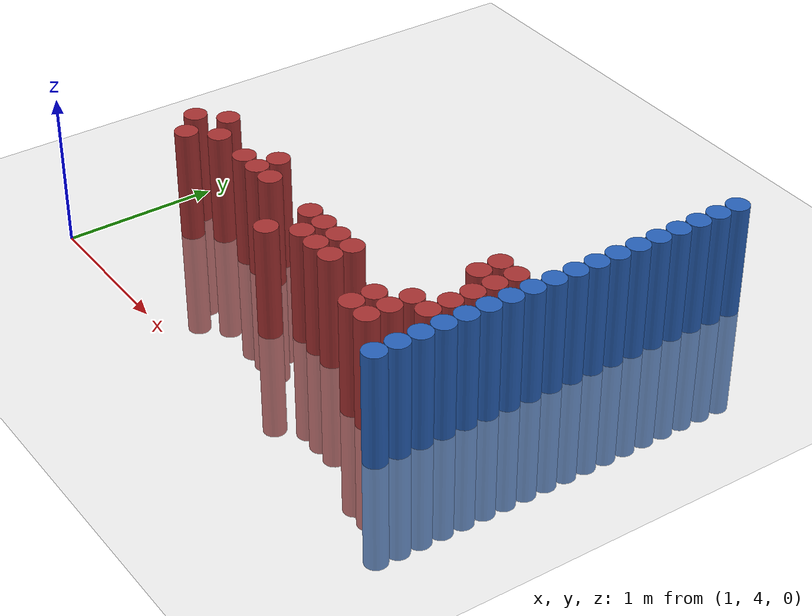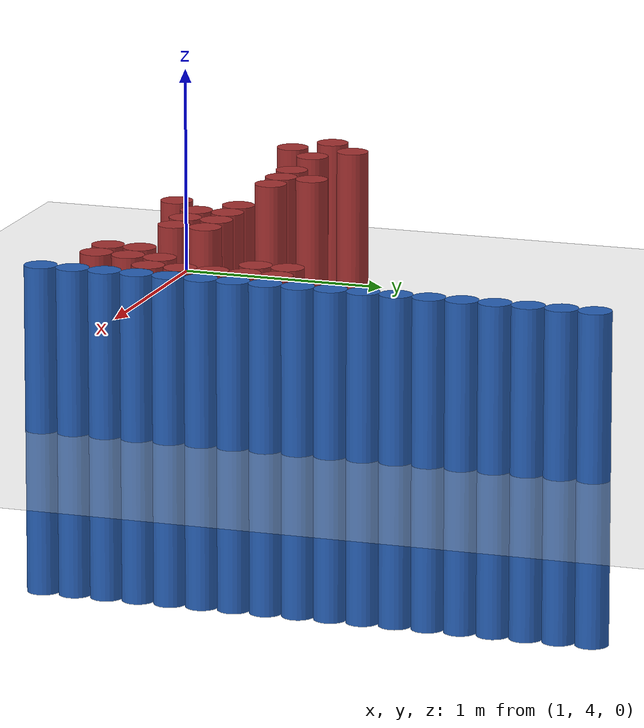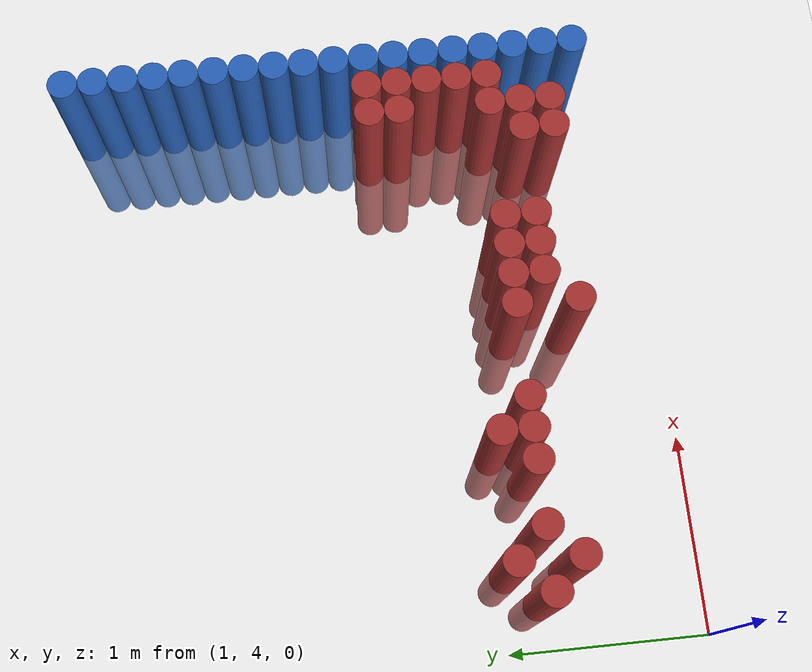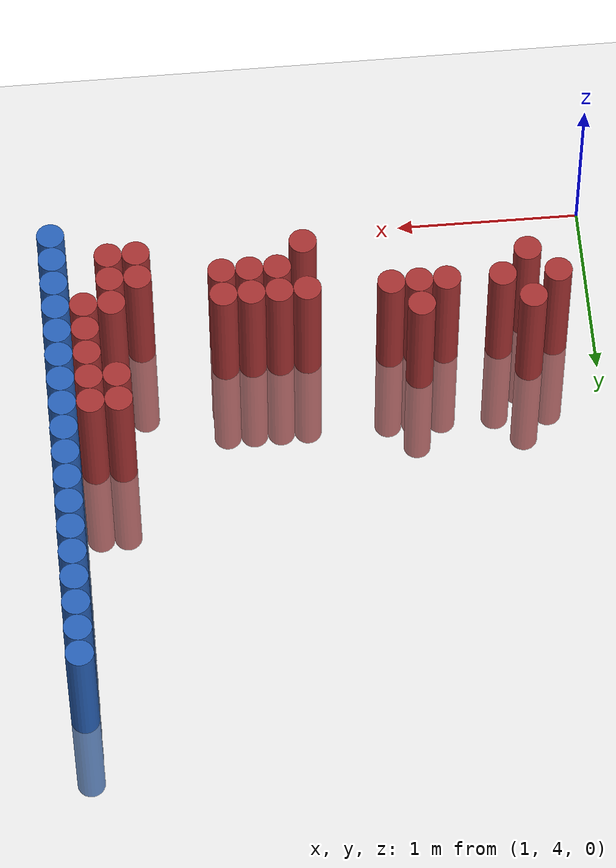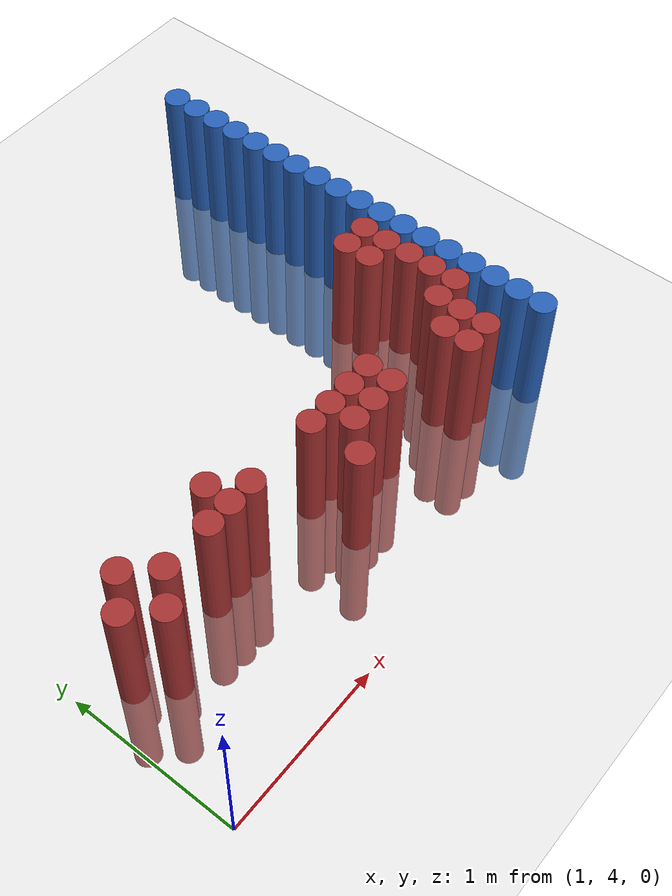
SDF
<sdf version="1.6">
 <world name="default">
  <model name="ground_plane">
   <static>1</static>
   <link name="link">
    <collision name="collision">
     <geometry><plane><normal>0 0 1</normal><size>100 100</size></plane></geometry>
     <surface><friction><ode><mu>100</mu><mu2>50</mu2></ode></friction></surface>
    </collision>
    <visual name="visual">
     <cast_shadows>0</cast_shadows>
     <geometry><plane><normal>0 0 1</normal><size>100 100</size></plane></geometry>
     <material>
      <script><uri>file://media/materials/scripts/gazebo.material</uri><name>Gazebo/Grey</name></script>
     </material>
    </visual>
   </link>
  </model>
  <model name="unit_cylinder_172">
   <static>1</static>
   <pose>3.925000 4.375000 0.000000 0.000000 0.000000 0.000000</pose>
   <link name="link">
    <inertial>
     <mass>1</mass>
     <inertia><ixx>0.145833</ixx><ixy>0</ixy><ixz>0</ixz><iyy>0.145833</iyy><iyz>0</iyz><izz>0.125</izz></inertia>
    </inertial>
    <collision name="collision">
     <geometry><cylinder><radius>0.075000</radius><length>1.5</length></cylinder></geometry>
    </collision>
    <visual name="visual">
     <geometry><cylinder><radius>0.075000</radius><length>1.5</length></cylinder></geometry>
     <material>
      <ambient>0.152000 0.379000 0.720000 1</ambient>
      <diffuse>0.152000 0.379000 0.720000 1</diffuse>
     </material>
     <material>
      <script><name>Gazebo/Grey</name><uri>file://media/materials/scripts/gazebo.material</uri></script>
     </material>
    </visual>
   </link>
  </model>
  <model name="unit_cylinder_174">
   <static>1</static>
   <pose>3.925000 4.525000 0.000000 0.000000 0.000000 0.000000</pose>
   <link name="link">
    <inertial>
     <mass>1</mass>
     <inertia><ixx>0.145833</ixx><ixy>0</ixy><ixz>0</ixz><iyy>0.145833</iyy><iyz>0</iyz><izz>0.125</izz></inertia>
    </inertial>
    <collision name="collision">
     <geometry><cylinder><radius>0.075000</radius><length>1.5</length></cylinder></geometry>
    </collision>
    <visual name="visual">
     <geometry><cylinder><radius>0.075000</radius><length>1.5</length></cylinder></geometry>
     <material>
      <ambient>0.152000 0.379000 0.720000 1</ambient>
      <diffuse>0.152000 0.379000 0.720000 1</diffuse>
     </material>
     <material>
      <script><name>Gazebo/Grey</name><uri>file://media/materials/scripts/gazebo.material</uri></script>
     </material>
    </visual>
   </link>
  </model>
  <model name="unit_cylinder_176">
   <static>1</static>
   <pose>3.925000 4.675000 0.000000 0.000000 0.000000 0.000000</pose>
   <link name="link">
    <inertial>
     <mass>1</mass>
     <inertia><ixx>0.145833</ixx><ixy>0</ixy><ixz>0</ixz><iyy>0.145833</iyy><iyz>0</iyz><izz>0.125</izz></inertia>
    </inertial>
    <collision name="collision">
     <geometry><cylinder><radius>0.075000</radius><length>1.5</length></cylinder></geometry>
    </collision>
    <visual name="visual">
     <geometry><cylinder><radius>0.075000</radius><length>1.5</length></cylinder></geometry>
     <material>
      <ambient>0.152000 0.379000 0.720000 1</ambient>
      <diffuse>0.152000 0.379000 0.720000 1</diffuse>
     </material>
     <material>
      <script><name>Gazebo/Grey</name><uri>file://media/materials/scripts/gazebo.material</uri></script>
     </material>
    </visual>
   </link>
  </model>
  <model name="unit_cylinder_178">
   <static>1</static>
   <pose>3.925000 4.825000 0.000000 0.000000 0.000000 0.000000</pose>
   <link name="link">
    <inertial>
     <mass>1</mass>
     <inertia><ixx>0.145833</ixx><ixy>0</ixy><ixz>0</ixz><iyy>0.145833</iyy><iyz>0</iyz><izz>0.125</izz></inertia>
    </inertial>
    <collision name="collision">
     <geometry><cylinder><radius>0.075000</radius><length>1.5</length></cylinder></geometry>
    </collision>
    <visual name="visual">
     <geometry><cylinder><radius>0.075000</radius><length>1.5</length></cylinder></geometry>
     <material>
      <ambient>0.152000 0.379000 0.720000 1</ambient>
      <diffuse>0.152000 0.379000 0.720000 1</diffuse>
     </material>
     <material>
      <script><name>Gazebo/Grey</name><uri>file://media/materials/scripts/gazebo.material</uri></script>
     </material>
    </visual>
   </link>
  </model>
  <model name="unit_cylinder_180">
   <static>1</static>
   <pose>3.925000 4.975000 0.000000 0.000000 0.000000 0.000000</pose>
   <link name="link">
    <inertial>
     <mass>1</mass>
     <inertia><ixx>0.145833</ixx><ixy>0</ixy><ixz>0</ixz><iyy>0.145833</iyy><iyz>0</iyz><izz>0.125</izz></inertia>
    </inertial>
    <collision name="collision">
     <geometry><cylinder><radius>0.075000</radius><length>1.5</length></cylinder></geometry>
    </collision>
    <visual name="visual">
     <geometry><cylinder><radius>0.075000</radius><length>1.5</length></cylinder></geometry>
     <material>
      <ambient>0.152000 0.379000 0.720000 1</ambient>
      <diffuse>0.152000 0.379000 0.720000 1</diffuse>
     </material>
     <material>
      <script><name>Gazebo/Grey</name><uri>file://media/materials/scripts/gazebo.material</uri></script>
     </material>
    </visual>
   </link>
  </model>
  <model name="unit_cylinder_182">
   <static>1</static>
   <pose>3.925000 5.125000 0.000000 0.000000 0.000000 0.000000</pose>
   <link name="link">
    <inertial>
     <mass>1</mass>
     <inertia><ixx>0.145833</ixx><ixy>0</ixy><ixz>0</ixz><iyy>0.145833</iyy><iyz>0</iyz><izz>0.125</izz></inertia>
    </inertial>
    <collision name="collision">
     <geometry><cylinder><radius>0.075000</radius><length>1.5</length></cylinder></geometry>
    </collision>
    <visual name="visual">
     <geometry><cylinder><radius>0.075000</radius><length>1.5</length></cylinder></geometry>
     <material>
      <ambient>0.152000 0.379000 0.720000 1</ambient>
      <diffuse>0.152000 0.379000 0.720000 1</diffuse>
     </material>
     <material>
      <script><name>Gazebo/Grey</name><uri>file://media/materials/scripts/gazebo.material</uri></script>
     </material>
    </visual>
   </link>
  </model>
  <model name="unit_cylinder_184">
   <static>1</static>
   <pose>3.925000 5.275000 0.000000 0.000000 0.000000 0.000000</pose>
   <link name="link">
    <inertial>
     <mass>1</mass>
     <inertia><ixx>0.145833</ixx><ixy>0</ixy><ixz>0</ixz><iyy>0.145833</iyy><iyz>0</iyz><izz>0.125</izz></inertia>
    </inertial>
    <collision name="collision">
     <geometry><cylinder><radius>0.075000</radius><length>1.5</length></cylinder></geometry>
    </collision>
    <visual name="visual">
     <geometry><cylinder><radius>0.075000</radius><length>1.5</length></cylinder></geometry>
     <material>
      <ambient>0.152000 0.379000 0.720000 1</ambient>
      <diffuse>0.152000 0.379000 0.720000 1</diffuse>
     </material>
     <material>
      <script><name>Gazebo/Grey</name><uri>file://media/materials/scripts/gazebo.material</uri></script>
     </material>
    </visual>
   </link>
  </model>
  <model name="unit_cylinder_186">
   <static>1</static>
   <pose>3.925000 5.425000 0.000000 0.000000 0.000000 0.000000</pose>
   <link name="link">
    <inertial>
     <mass>1</mass>
     <inertia><ixx>0.145833</ixx><ixy>0</ixy><ixz>0</ixz><iyy>0.145833</iyy><iyz>0</iyz><izz>0.125</izz></inertia>
    </inertial>
    <collision name="collision">
     <geometry><cylinder><radius>0.075000</radius><length>1.5</length></cylinder></geometry>
    </collision>
    <visual name="visual">
     <geometry><cylinder><radius>0.075000</radius><length>1.5</length></cylinder></geometry>
     <material>
      <ambient>0.152000 0.379000 0.720000 1</ambient>
      <diffuse>0.152000 0.379000 0.720000 1</diffuse>
     </material>
     <material>
      <script><name>Gazebo/Grey</name><uri>file://media/materials/scripts/gazebo.material</uri></script>
     </material>
    </visual>
   </link>
  </model>
  <model name="unit_cylinder_188">
   <static>1</static>
   <pose>3.925000 5.575000 0.000000 0.000000 0.000000 0.000000</pose>
   <link name="link">
    <inertial>
     <mass>1</mass>
     <inertia><ixx>0.145833</ixx><ixy>0</ixy><ixz>0</ixz><iyy>0.145833</iyy><iyz>0</iyz><izz>0.125</izz></inertia>
    </inertial>
    <collision name="collision">
     <geometry><cylinder><radius>0.075000</radius><length>1.5</length></cylinder></geometry>
    </collision>
    <visual name="visual">
     <geometry><cylinder><radius>0.075000</radius><length>1.5</length></cylinder></geometry>
     <material>
      <ambient>0.152000 0.379000 0.720000 1</ambient>
      <diffuse>0.152000 0.379000 0.720000 1</diffuse>
     </material>
     <material>
      <script><name>Gazebo/Grey</name><uri>file://media/materials/scripts/gazebo.material</uri></script>
     </material>
    </visual>
   </link>
  </model>
  <model name="unit_cylinder_190">
   <static>1</static>
   <pose>3.925000 5.725000 0.000000 0.000000 0.000000 0.000000</pose>
   <link name="link">
    <inertial>
     <mass>1</mass>
     <inertia><ixx>0.145833</ixx><ixy>0</ixy><ixz>0</ixz><iyy>0.145833</iyy><iyz>0</iyz><izz>0.125</izz></inertia>
    </inertial>
    <collision name="collision">
     <geometry><cylinder><radius>0.075000</radius><length>1.5</length></cylinder></geometry>
    </collision>
    <visual name="visual">
     <geometry><cylinder><radius>0.075000</radius><length>1.5</length></cylinder></geometry>
     <material>
      <ambient>0.152000 0.379000 0.720000 1</ambient>
      <diffuse>0.152000 0.379000 0.720000 1</diffuse>
     </material>
     <material>
      <script><name>Gazebo/Grey</name><uri>file://media/materials/scripts/gazebo.material</uri></script>
     </material>
    </visual>
   </link>
  </model>
  <model name="unit_cylinder_192">
   <static>1</static>
   <pose>3.925000 5.875000 0.000000 0.000000 0.000000 0.000000</pose>
   <link name="link">
    <inertial>
     <mass>1</mass>
     <inertia><ixx>0.145833</ixx><ixy>0</ixy><ixz>0</ixz><iyy>0.145833</iyy><iyz>0</iyz><izz>0.125</izz></inertia>
    </inertial>
    <collision name="collision">
     <geometry><cylinder><radius>0.075000</radius><length>1.5</length></cylinder></geometry>
    </collision>
    <visual name="visual">
     <geometry><cylinder><radius>0.075000</radius><length>1.5</length></cylinder></geometry>
     <material>
      <ambient>0.152000 0.379000 0.720000 1</ambient>
      <diffuse>0.152000 0.379000 0.720000 1</diffuse>
     </material>
     <material>
      <script><name>Gazebo/Grey</name><uri>file://media/materials/scripts/gazebo.material</uri></script>
     </material>
    </visual>
   </link>
  </model>
  <model name="unit_cylinder_194">
   <static>1</static>
   <pose>3.925000 6.025000 0.000000 0.000000 0.000000 0.000000</pose>
   <link name="link">
    <inertial>
     <mass>1</mass>
     <inertia><ixx>0.145833</ixx><ixy>0</ixy><ixz>0</ixz><iyy>0.145833</iyy><iyz>0</iyz><izz>0.125</izz></inertia>
    </inertial>
    <collision name="collision">
     <geometry><cylinder><radius>0.075000</radius><length>1.5</length></cylinder></geometry>
    </collision>
    <visual name="visual">
     <geometry><cylinder><radius>0.075000</radius><length>1.5</length></cylinder></geometry>
     <material>
      <ambient>0.152000 0.379000 0.720000 1</ambient>
      <diffuse>0.152000 0.379000 0.720000 1</diffuse>
     </material>
     <material>
      <script><name>Gazebo/Grey</name><uri>file://media/materials/scripts/gazebo.material</uri></script>
     </material>
    </visual>
   </link>
  </model>
  <model name="unit_cylinder_196">
   <static>1</static>
   <pose>3.925000 6.175000 0.000000 0.000000 0.000000 0.000000</pose>
   <link name="link">
    <inertial>
     <mass>1</mass>
     <inertia><ixx>0.145833</ixx><ixy>0</ixy><ixz>0</ixz><iyy>0.145833</iyy><iyz>0</iyz><izz>0.125</izz></inertia>
    </inertial>
    <collision name="collision">
     <geometry><cylinder><radius>0.075000</radius><length>1.5</length></cylinder></geometry>
    </collision>
    <visual name="visual">
     <geometry><cylinder><radius>0.075000</radius><length>1.5</length></cylinder></geometry>
     <material>
      <ambient>0.152000 0.379000 0.720000 1</ambient>
      <diffuse>0.152000 0.379000 0.720000 1</diffuse>
     </material>
     <material>
      <script><name>Gazebo/Grey</name><uri>file://media/materials/scripts/gazebo.material</uri></script>
     </material>
    </visual>
   </link>
  </model>
  <model name="unit_cylinder_198">
   <static>1</static>
   <pose>3.925000 6.325000 0.000000 0.000000 0.000000 0.000000</pose>
   <link name="link">
    <inertial>
     <mass>1</mass>
     <inertia><ixx>0.145833</ixx><ixy>0</ixy><ixz>0</ixz><iyy>0.145833</iyy><iyz>0</iyz><izz>0.125</izz></inertia>
    </inertial>
    <collision name="collision">
     <geometry><cylinder><radius>0.075000</radius><length>1.5</length></cylinder></geometry>
    </collision>
    <visual name="visual">
     <geometry><cylinder><radius>0.075000</radius><length>1.5</length></cylinder></geometry>
     <material>
      <ambient>0.152000 0.379000 0.720000 1</ambient>
      <diffuse>0.152000 0.379000 0.720000 1</diffuse>
     </material>
     <material>
      <script><name>Gazebo/Grey</name><uri>file://media/materials/scripts/gazebo.material</uri></script>
     </material>
    </visual>
   </link>
  </model>
  <model name="unit_cylinder_200">
   <static>1</static>
   <pose>3.925000 6.475000 0.000000 0.000000 0.000000 0.000000</pose>
   <link name="link">
    <inertial>
     <mass>1</mass>
     <inertia><ixx>0.145833</ixx><ixy>0</ixy><ixz>0</ixz><iyy>0.145833</iyy><iyz>0</iyz><izz>0.125</izz></inertia>
    </inertial>
    <collision name="collision">
     <geometry><cylinder><radius>0.075000</radius><length>1.5</length></cylinder></geometry>
    </collision>
    <visual name="visual">
     <geometry><cylinder><radius>0.075000</radius><length>1.5</length></cylinder></geometry>
     <material>
      <ambient>0.152000 0.379000 0.720000 1</ambient>
      <diffuse>0.152000 0.379000 0.720000 1</diffuse>
     </material>
     <material>
      <script><name>Gazebo/Grey</name><uri>file://media/materials/scripts/gazebo.material</uri></script>
     </material>
    </visual>
   </link>
  </model>
  <model name="unit_cylinder_202">
   <static>1</static>
   <pose>3.925000 6.625000 0.000000 0.000000 0.000000 0.000000</pose>
   <link name="link">
    <inertial>
     <mass>1</mass>
     <inertia><ixx>0.145833</ixx><ixy>0</ixy><ixz>0</ixz><iyy>0.145833</iyy><iyz>0</iyz><izz>0.125</izz></inertia>
    </inertial>
    <collision name="collision">
     <geometry><cylinder><radius>0.075000</radius><length>1.5</length></cylinder></geometry>
    </collision>
    <visual name="visual">
     <geometry><cylinder><radius>0.075000</radius><length>1.5</length></cylinder></geometry>
     <material>
      <ambient>0.152000 0.379000 0.720000 1</ambient>
      <diffuse>0.152000 0.379000 0.720000 1</diffuse>
     </material>
     <material>
      <script><name>Gazebo/Grey</name><uri>file://media/materials/scripts/gazebo.material</uri></script>
     </material>
    </visual>
   </link>
  </model>
  <model name="unit_cylinder_204">
   <static>1</static>
   <pose>3.925000 6.775000 0.000000 0.000000 0.000000 0.000000</pose>
   <link name="link">
    <inertial>
     <mass>1</mass>
     <inertia><ixx>0.145833</ixx><ixy>0</ixy><ixz>0</ixz><iyy>0.145833</iyy><iyz>0</iyz><izz>0.125</izz></inertia>
    </inertial>
    <collision name="collision">
     <geometry><cylinder><radius>0.075000</radius><length>1.5</length></cylinder></geometry>
    </collision>
    <visual name="visual">
     <geometry><cylinder><radius>0.075000</radius><length>1.5</length></cylinder></geometry>
     <material>
      <ambient>0.152000 0.379000 0.720000 1</ambient>
      <diffuse>0.152000 0.379000 0.720000 1</diffuse>
     </material>
     <material>
      <script><name>Gazebo/Grey</name><uri>file://media/materials/scripts/gazebo.material</uri></script>
     </material>
    </visual>
   </link>
  </model>
  <model name="unit_cylinder_206">
   <static>1</static>
   <pose>3.925000 6.925000 0.000000 0.000000 0.000000 0.000000</pose>
   <link name="link">
    <inertial>
     <mass>1</mass>
     <inertia><ixx>0.145833</ixx><ixy>0</ixy><ixz>0</ixz><iyy>0.145833</iyy><iyz>0</iyz><izz>0.125</izz></inertia>
    </inertial>
    <collision name="collision">
     <geometry><cylinder><radius>0.075000</radius><length>1.5</length></cylinder></geometry>
    </collision>
    <visual name="visual">
     <geometry><cylinder><radius>0.075000</radius><length>1.5</length></cylinder></geometry>
     <material>
      <ambient>0.152000 0.379000 0.720000 1</ambient>
      <diffuse>0.152000 0.379000 0.720000 1</diffuse>
     </material>
     <material>
      <script><name>Gazebo/Grey</name><uri>file://media/materials/scripts/gazebo.material</uri></script>
     </material>
    </visual>
   </link>
  </model>
  <model name="unit_cylinder_428">
   <static>1</static>
   <pose>1.225000 4.825000 0.000000 0.000000 0.000000 0.000000</pose>
   <link name="link">
    <inertial>
     <mass>1</mass>
     <inertia><ixx>0.145833</ixx><ixy>0</ixy><ixz>0</ixz><iyy>0.145833</iyy><iyz>0</iyz><izz>0.125</izz></inertia>
    </inertial>
    <collision name="collision">
     <geometry><cylinder><radius>0.075000</radius><length>1.5</length></cylinder></geometry>
    </collision>
    <visual name="visual">
     <geometry><cylinder><radius>0.075000</radius><length>1.5</length></cylinder></geometry>
     <material>
      <ambient>0.648000 0.192000 0.192000 1</ambient>
      <diffuse>0.648000 0.192000 0.192000 1</diffuse>
     </material>
     <material>
      <script><name>Gazebo/Grey</name><uri>file://media/materials/scripts/gazebo.material</uri></script>
     </material>
    </visual>
   </link>
  </model>
  <model name="unit_cylinder_430">
   <static>1</static>
   <pose>1.375000 4.675000 0.000000 0.000000 0.000000 0.000000</pose>
   <link name="link">
    <inertial>
     <mass>1</mass>
     <inertia><ixx>0.145833</ixx><ixy>0</ixy><ixz>0</ixz><iyy>0.145833</iyy><iyz>0</iyz><izz>0.125</izz></inertia>
    </inertial>
    <collision name="collision">
     <geometry><cylinder><radius>0.075000</radius><length>1.5</length></cylinder></geometry>
    </collision>
    <visual name="visual">
     <geometry><cylinder><radius>0.075000</radius><length>1.5</length></cylinder></geometry>
     <material>
      <ambient>0.648000 0.192000 0.192000 1</ambient>
      <diffuse>0.648000 0.192000 0.192000 1</diffuse>
     </material>
     <material>
      <script><name>Gazebo/Grey</name><uri>file://media/materials/scripts/gazebo.material</uri></script>
     </material>
    </visual>
   </link>
  </model>
  <model name="unit_cylinder_431">
   <static>1</static>
   <pose>1.375000 4.975000 0.000000 0.000000 0.000000 0.000000</pose>
   <link name="link">
    <inertial>
     <mass>1</mass>
     <inertia><ixx>0.145833</ixx><ixy>0</ixy><ixz>0</ixz><iyy>0.145833</iyy><iyz>0</iyz><izz>0.125</izz></inertia>
    </inertial>
    <collision name="collision">
     <geometry><cylinder><radius>0.075000</radius><length>1.5</length></cylinder></geometry>
    </collision>
    <visual name="visual">
     <geometry><cylinder><radius>0.075000</radius><length>1.5</length></cylinder></geometry>
     <material>
      <ambient>0.648000 0.192000 0.192000 1</ambient>
      <diffuse>0.648000 0.192000 0.192000 1</diffuse>
     </material>
     <material>
      <script><name>Gazebo/Grey</name><uri>file://media/materials/scripts/gazebo.material</uri></script>
     </material>
    </visual>
   </link>
  </model>
  <model name="unit_cylinder_434">
   <static>1</static>
   <pose>1.525000 4.825000 0.000000 0.000000 0.000000 0.000000</pose>
   <link name="link">
    <inertial>
     <mass>1</mass>
     <inertia><ixx>0.145833</ixx><ixy>0</ixy><ixz>0</ixz><iyy>0.145833</iyy><iyz>0</iyz><izz>0.125</izz></inertia>
    </inertial>
    <collision name="collision">
     <geometry><cylinder><radius>0.075000</radius><length>1.5</length></cylinder></geometry>
    </collision>
    <visual name="visual">
     <geometry><cylinder><radius>0.075000</radius><length>1.5</length></cylinder></geometry>
     <material>
      <ambient>0.648000 0.192000 0.192000 1</ambient>
      <diffuse>0.648000 0.192000 0.192000 1</diffuse>
     </material>
     <material>
      <script><name>Gazebo/Grey</name><uri>file://media/materials/scripts/gazebo.material</uri></script>
     </material>
    </visual>
   </link>
  </model>
  <model name="unit_cylinder_442">
   <static>1</static>
   <pose>1.825000 4.825000 0.000000 0.000000 0.000000 0.000000</pose>
   <link name="link">
    <inertial>
     <mass>1</mass>
     <inertia><ixx>0.145833</ixx><ixy>0</ixy><ixz>0</ixz><iyy>0.145833</iyy><iyz>0</iyz><izz>0.125</izz></inertia>
    </inertial>
    <collision name="collision">
     <geometry><cylinder><radius>0.075000</radius><length>1.5</length></cylinder></geometry>
    </collision>
    <visual name="visual">
     <geometry><cylinder><radius>0.075000</radius><length>1.5</length></cylinder></geometry>
     <material>
      <ambient>0.648000 0.192000 0.192000 1</ambient>
      <diffuse>0.648000 0.192000 0.192000 1</diffuse>
     </material>
     <material>
      <script><name>Gazebo/Grey</name><uri>file://media/materials/scripts/gazebo.material</uri></script>
     </material>
    </visual>
   </link>
  </model>
  <model name="unit_cylinder_443">
   <static>1</static>
   <pose>1.975000 4.825000 0.000000 0.000000 0.000000 0.000000</pose>
   <link name="link">
    <inertial>
     <mass>1</mass>
     <inertia><ixx>0.145833</ixx><ixy>0</ixy><ixz>0</ixz><iyy>0.145833</iyy><iyz>0</iyz><izz>0.125</izz></inertia>
    </inertial>
    <collision name="collision">
     <geometry><cylinder><radius>0.075000</radius><length>1.5</length></cylinder></geometry>
    </collision>
    <visual name="visual">
     <geometry><cylinder><radius>0.075000</radius><length>1.5</length></cylinder></geometry>
     <material>
      <ambient>0.648000 0.192000 0.192000 1</ambient>
      <diffuse>0.648000 0.192000 0.192000 1</diffuse>
     </material>
     <material>
      <script><name>Gazebo/Grey</name><uri>file://media/materials/scripts/gazebo.material</uri></script>
     </material>
    </visual>
   </link>
  </model>
  <model name="unit_cylinder_444">
   <static>1</static>
   <pose>1.975000 4.975000 0.000000 0.000000 0.000000 0.000000</pose>
   <link name="link">
    <inertial>
     <mass>1</mass>
     <inertia><ixx>0.145833</ixx><ixy>0</ixy><ixz>0</ixz><iyy>0.145833</iyy><iyz>0</iyz><izz>0.125</izz></inertia>
    </inertial>
    <collision name="collision">
     <geometry><cylinder><radius>0.075000</radius><length>1.5</length></cylinder></geometry>
    </collision>
    <visual name="visual">
     <geometry><cylinder><radius>0.075000</radius><length>1.5</length></cylinder></geometry>
     <material>
      <ambient>0.648000 0.192000 0.192000 1</ambient>
      <diffuse>0.648000 0.192000 0.192000 1</diffuse>
     </material>
     <material>
      <script><name>Gazebo/Grey</name><uri>file://media/materials/scripts/gazebo.material</uri></script>
     </material>
    </visual>
   </link>
  </model>
  <model name="unit_cylinder_446">
   <static>1</static>
   <pose>2.125000 4.825000 0.000000 0.000000 0.000000 0.000000</pose>
   <link name="link">
    <inertial>
     <mass>1</mass>
     <inertia><ixx>0.145833</ixx><ixy>0</ixy><ixz>0</ixz><iyy>0.145833</iyy><iyz>0</iyz><izz>0.125</izz></inertia>
    </inertial>
    <collision name="collision">
     <geometry><cylinder><radius>0.075000</radius><length>1.5</length></cylinder></geometry>
    </collision>
    <visual name="visual">
     <geometry><cylinder><radius>0.075000</radius><length>1.5</length></cylinder></geometry>
     <material>
      <ambient>0.648000 0.192000 0.192000 1</ambient>
      <diffuse>0.648000 0.192000 0.192000 1</diffuse>
     </material>
     <material>
      <script><name>Gazebo/Grey</name><uri>file://media/materials/scripts/gazebo.material</uri></script>
     </material>
    </visual>
   </link>
  </model>
  <model name="unit_cylinder_456">
   <static>1</static>
   <pose>2.575000 4.525000 0.000000 0.000000 0.000000 0.000000</pose>
   <link name="link">
    <inertial>
     <mass>1</mass>
     <inertia><ixx>0.145833</ixx><ixy>0</ixy><ixz>0</ixz><iyy>0.145833</iyy><iyz>0</iyz><izz>0.125</izz></inertia>
    </inertial>
    <collision name="collision">
     <geometry><cylinder><radius>0.075000</radius><length>1.5</length></cylinder></geometry>
    </collision>
    <visual name="visual">
     <geometry><cylinder><radius>0.075000</radius><length>1.5</length></cylinder></geometry>
     <material>
      <ambient>0.648000 0.192000 0.192000 1</ambient>
      <diffuse>0.648000 0.192000 0.192000 1</diffuse>
     </material>
     <material>
      <script><name>Gazebo/Grey</name><uri>file://media/materials/scripts/gazebo.material</uri></script>
     </material>
    </visual>
   </link>
  </model>
  <model name="unit_cylinder_457">
   <static>1</static>
   <pose>2.575000 4.825000 0.000000 0.000000 0.000000 0.000000</pose>
   <link name="link">
    <inertial>
     <mass>1</mass>
     <inertia><ixx>0.145833</ixx><ixy>0</ixy><ixz>0</ixz><iyy>0.145833</iyy><iyz>0</iyz><izz>0.125</izz></inertia>
    </inertial>
    <collision name="collision">
     <geometry><cylinder><radius>0.075000</radius><length>1.5</length></cylinder></geometry>
    </collision>
    <visual name="visual">
     <geometry><cylinder><radius>0.075000</radius><length>1.5</length></cylinder></geometry>
     <material>
      <ambient>0.648000 0.192000 0.192000 1</ambient>
      <diffuse>0.648000 0.192000 0.192000 1</diffuse>
     </material>
     <material>
      <script><name>Gazebo/Grey</name><uri>file://media/materials/scripts/gazebo.material</uri></script>
     </material>
    </visual>
   </link>
  </model>
  <model name="unit_cylinder_461">
   <static>1</static>
   <pose>2.725000 4.675000 0.000000 0.000000 0.000000 0.000000</pose>
   <link name="link">
    <inertial>
     <mass>1</mass>
     <inertia><ixx>0.145833</ixx><ixy>0</ixy><ixz>0</ixz><iyy>0.145833</iyy><iyz>0</iyz><izz>0.125</izz></inertia>
    </inertial>
    <collision name="collision">
     <geometry><cylinder><radius>0.075000</radius><length>1.5</length></cylinder></geometry>
    </collision>
    <visual name="visual">
     <geometry><cylinder><radius>0.075000</radius><length>1.5</length></cylinder></geometry>
     <material>
      <ambient>0.648000 0.192000 0.192000 1</ambient>
      <diffuse>0.648000 0.192000 0.192000 1</diffuse>
     </material>
     <material>
      <script><name>Gazebo/Grey</name><uri>file://media/materials/scripts/gazebo.material</uri></script>
     </material>
    </visual>
   </link>
  </model>
  <model name="unit_cylinder_462">
   <static>1</static>
   <pose>2.725000 4.825000 0.000000 0.000000 0.000000 0.000000</pose>
   <link name="link">
    <inertial>
     <mass>1</mass>
     <inertia><ixx>0.145833</ixx><ixy>0</ixy><ixz>0</ixz><iyy>0.145833</iyy><iyz>0</iyz><izz>0.125</izz></inertia>
    </inertial>
    <collision name="collision">
     <geometry><cylinder><radius>0.075000</radius><length>1.5</length></cylinder></geometry>
    </collision>
    <visual name="visual">
     <geometry><cylinder><radius>0.075000</radius><length>1.5</length></cylinder></geometry>
     <material>
      <ambient>0.648000 0.192000 0.192000 1</ambient>
      <diffuse>0.648000 0.192000 0.192000 1</diffuse>
     </material>
     <material>
      <script><name>Gazebo/Grey</name><uri>file://media/materials/scripts/gazebo.material</uri></script>
     </material>
    </visual>
   </link>
  </model>
  <model name="unit_cylinder_465">
   <static>1</static>
   <pose>2.875000 4.675000 0.000000 0.000000 0.000000 0.000000</pose>
   <link name="link">
    <inertial>
     <mass>1</mass>
     <inertia><ixx>0.145833</ixx><ixy>0</ixy><ixz>0</ixz><iyy>0.145833</iyy><iyz>0</iyz><izz>0.125</izz></inertia>
    </inertial>
    <collision name="collision">
     <geometry><cylinder><radius>0.075000</radius><length>1.5</length></cylinder></geometry>
    </collision>
    <visual name="visual">
     <geometry><cylinder><radius>0.075000</radius><length>1.5</length></cylinder></geometry>
     <material>
      <ambient>0.648000 0.192000 0.192000 1</ambient>
      <diffuse>0.648000 0.192000 0.192000 1</diffuse>
     </material>
     <material>
      <script><name>Gazebo/Grey</name><uri>file://media/materials/scripts/gazebo.material</uri></script>
     </material>
    </visual>
   </link>
  </model>
  <model name="unit_cylinder_466">
   <static>1</static>
   <pose>2.875000 4.825000 0.000000 0.000000 0.000000 0.000000</pose>
   <link name="link">
    <inertial>
     <mass>1</mass>
     <inertia><ixx>0.145833</ixx><ixy>0</ixy><ixz>0</ixz><iyy>0.145833</iyy><iyz>0</iyz><izz>0.125</izz></inertia>
    </inertial>
    <collision name="collision">
     <geometry><cylinder><radius>0.075000</radius><length>1.5</length></cylinder></geometry>
    </collision>
    <visual name="visual">
     <geometry><cylinder><radius>0.075000</radius><length>1.5</length></cylinder></geometry>
     <material>
      <ambient>0.648000 0.192000 0.192000 1</ambient>
      <diffuse>0.648000 0.192000 0.192000 1</diffuse>
     </material>
     <material>
      <script><name>Gazebo/Grey</name><uri>file://media/materials/scripts/gazebo.material</uri></script>
     </material>
    </visual>
   </link>
  </model>
  <model name="unit_cylinder_468">
   <static>1</static>
   <pose>3.025000 4.675000 0.000000 0.000000 0.000000 0.000000</pose>
   <link name="link">
    <inertial>
     <mass>1</mass>
     <inertia><ixx>0.145833</ixx><ixy>0</ixy><ixz>0</ixz><iyy>0.145833</iyy><iyz>0</iyz><izz>0.125</izz></inertia>
    </inertial>
    <collision name="collision">
     <geometry><cylinder><radius>0.075000</radius><length>1.5</length></cylinder></geometry>
    </collision>
    <visual name="visual">
     <geometry><cylinder><radius>0.075000</radius><length>1.5</length></cylinder></geometry>
     <material>
      <ambient>0.648000 0.192000 0.192000 1</ambient>
      <diffuse>0.648000 0.192000 0.192000 1</diffuse>
     </material>
     <material>
      <script><name>Gazebo/Grey</name><uri>file://media/materials/scripts/gazebo.material</uri></script>
     </material>
    </visual>
   </link>
  </model>
  <model name="unit_cylinder_469">
   <static>1</static>
   <pose>3.025000 4.825000 0.000000 0.000000 0.000000 0.000000</pose>
   <link name="link">
    <inertial>
     <mass>1</mass>
     <inertia><ixx>0.145833</ixx><ixy>0</ixy><ixz>0</ixz><iyy>0.145833</iyy><iyz>0</iyz><izz>0.125</izz></inertia>
    </inertial>
    <collision name="collision">
     <geometry><cylinder><radius>0.075000</radius><length>1.5</length></cylinder></geometry>
    </collision>
    <visual name="visual">
     <geometry><cylinder><radius>0.075000</radius><length>1.5</length></cylinder></geometry>
     <material>
      <ambient>0.648000 0.192000 0.192000 1</ambient>
      <diffuse>0.648000 0.192000 0.192000 1</diffuse>
     </material>
     <material>
      <script><name>Gazebo/Grey</name><uri>file://media/materials/scripts/gazebo.material</uri></script>
     </material>
    </visual>
   </link>
  </model>
  <model name="unit_cylinder_484">
   <static>1</static>
   <pose>3.475000 4.525000 0.000000 0.000000 0.000000 0.000000</pose>
   <link name="link">
    <inertial>
     <mass>1</mass>
     <inertia><ixx>0.145833</ixx><ixy>0</ixy><ixz>0</ixz><iyy>0.145833</iyy><iyz>0</iyz><izz>0.125</izz></inertia>
    </inertial>
    <collision name="collision">
     <geometry><cylinder><radius>0.075000</radius><length>1.5</length></cylinder></geometry>
    </collision>
    <visual name="visual">
     <geometry><cylinder><radius>0.075000</radius><length>1.5</length></cylinder></geometry>
     <material>
      <ambient>0.648000 0.192000 0.192000 1</ambient>
      <diffuse>0.648000 0.192000 0.192000 1</diffuse>
     </material>
     <material>
      <script><name>Gazebo/Grey</name><uri>file://media/materials/scripts/gazebo.material</uri></script>
     </material>
    </visual>
   </link>
  </model>
  <model name="unit_cylinder_485">
   <static>1</static>
   <pose>3.475000 4.675000 0.000000 0.000000 0.000000 0.000000</pose>
   <link name="link">
    <inertial>
     <mass>1</mass>
     <inertia><ixx>0.145833</ixx><ixy>0</ixy><ixz>0</ixz><iyy>0.145833</iyy><iyz>0</iyz><izz>0.125</izz></inertia>
    </inertial>
    <collision name="collision">
     <geometry><cylinder><radius>0.075000</radius><length>1.5</length></cylinder></geometry>
    </collision>
    <visual name="visual">
     <geometry><cylinder><radius>0.075000</radius><length>1.5</length></cylinder></geometry>
     <material>
      <ambient>0.648000 0.192000 0.192000 1</ambient>
      <diffuse>0.648000 0.192000 0.192000 1</diffuse>
     </material>
     <material>
      <script><name>Gazebo/Grey</name><uri>file://media/materials/scripts/gazebo.material</uri></script>
     </material>
    </visual>
   </link>
  </model>
  <model name="unit_cylinder_496">
   <static>1</static>
   <pose>3.625000 4.525000 0.000000 0.000000 0.000000 0.000000</pose>
   <link name="link">
    <inertial>
     <mass>1</mass>
     <inertia><ixx>0.145833</ixx><ixy>0</ixy><ixz>0</ixz><iyy>0.145833</iyy><iyz>0</iyz><izz>0.125</izz></inertia>
    </inertial>
    <collision name="collision">
     <geometry><cylinder><radius>0.075000</radius><length>1.5</length></cylinder></geometry>
    </collision>
    <visual name="visual">
     <geometry><cylinder><radius>0.075000</radius><length>1.5</length></cylinder></geometry>
     <material>
      <ambient>0.648000 0.192000 0.192000 1</ambient>
      <diffuse>0.648000 0.192000 0.192000 1</diffuse>
     </material>
     <material>
      <script><name>Gazebo/Grey</name><uri>file://media/materials/scripts/gazebo.material</uri></script>
     </material>
    </visual>
   </link>
  </model>
  <model name="unit_cylinder_497">
   <static>1</static>
   <pose>3.625000 4.675000 0.000000 0.000000 0.000000 0.000000</pose>
   <link name="link">
    <inertial>
     <mass>1</mass>
     <inertia><ixx>0.145833</ixx><ixy>0</ixy><ixz>0</ixz><iyy>0.145833</iyy><iyz>0</iyz><izz>0.125</izz></inertia>
    </inertial>
    <collision name="collision">
     <geometry><cylinder><radius>0.075000</radius><length>1.5</length></cylinder></geometry>
    </collision>
    <visual name="visual">
     <geometry><cylinder><radius>0.075000</radius><length>1.5</length></cylinder></geometry>
     <material>
      <ambient>0.648000 0.192000 0.192000 1</ambient>
      <diffuse>0.648000 0.192000 0.192000 1</diffuse>
     </material>
     <material>
      <script><name>Gazebo/Grey</name><uri>file://media/materials/scripts/gazebo.material</uri></script>
     </material>
    </visual>
   </link>
  </model>
  <model name="unit_cylinder_498">
   <static>1</static>
   <pose>3.625000 4.825000 0.000000 0.000000 0.000000 0.000000</pose>
   <link name="link">
    <inertial>
     <mass>1</mass>
     <inertia><ixx>0.145833</ixx><ixy>0</ixy><ixz>0</ixz><iyy>0.145833</iyy><iyz>0</iyz><izz>0.125</izz></inertia>
    </inertial>
    <collision name="collision">
     <geometry><cylinder><radius>0.075000</radius><length>1.5</length></cylinder></geometry>
    </collision>
    <visual name="visual">
     <geometry><cylinder><radius>0.075000</radius><length>1.5</length></cylinder></geometry>
     <material>
      <ambient>0.648000 0.192000 0.192000 1</ambient>
      <diffuse>0.648000 0.192000 0.192000 1</diffuse>
     </material>
     <material>
      <script><name>Gazebo/Grey</name><uri>file://media/materials/scripts/gazebo.material</uri></script>
     </material>
    </visual>
   </link>
  </model>
  <model name="unit_cylinder_499">
   <static>1</static>
   <pose>3.625000 5.275000 0.000000 0.000000 0.000000 0.000000</pose>
   <link name="link">
    <inertial>
     <mass>1</mass>
     <inertia><ixx>0.145833</ixx><ixy>0</ixy><ixz>0</ixz><iyy>0.145833</iyy><iyz>0</iyz><izz>0.125</izz></inertia>
    </inertial>
    <collision name="collision">
     <geometry><cylinder><radius>0.075000</radius><length>1.5</length></cylinder></geometry>
    </collision>
    <visual name="visual">
     <geometry><cylinder><radius>0.075000</radius><length>1.5</length></cylinder></geometry>
     <material>
      <ambient>0.648000 0.192000 0.192000 1</ambient>
      <diffuse>0.648000 0.192000 0.192000 1</diffuse>
     </material>
     <material>
      <script><name>Gazebo/Grey</name><uri>file://media/materials/scripts/gazebo.material</uri></script>
     </material>
    </visual>
   </link>
  </model>
  <model name="unit_cylinder_500">
   <static>1</static>
   <pose>3.625000 5.425000 0.000000 0.000000 0.000000 0.000000</pose>
   <link name="link">
    <inertial>
     <mass>1</mass>
     <inertia><ixx>0.145833</ixx><ixy>0</ixy><ixz>0</ixz><iyy>0.145833</iyy><iyz>0</iyz><izz>0.125</izz></inertia>
    </inertial>
    <collision name="collision">
     <geometry><cylinder><radius>0.075000</radius><length>1.5</length></cylinder></geometry>
    </collision>
    <visual name="visual">
     <geometry><cylinder><radius>0.075000</radius><length>1.5</length></cylinder></geometry>
     <material>
      <ambient>0.648000 0.192000 0.192000 1</ambient>
      <diffuse>0.648000 0.192000 0.192000 1</diffuse>
     </material>
     <material>
      <script><name>Gazebo/Grey</name><uri>file://media/materials/scripts/gazebo.material</uri></script>
     </material>
    </visual>
   </link>
  </model>
  <model name="unit_cylinder_529">
   <static>1</static>
   <pose>3.775000 4.825000 0.000000 0.000000 0.000000 0.000000</pose>
   <link name="link">
    <inertial>
     <mass>1</mass>
     <inertia><ixx>0.145833</ixx><ixy>0</ixy><ixz>0</ixz><iyy>0.145833</iyy><iyz>0</iyz><izz>0.125</izz></inertia>
    </inertial>
    <collision name="collision">
     <geometry><cylinder><radius>0.075000</radius><length>1.5</length></cylinder></geometry>
    </collision>
    <visual name="visual">
     <geometry><cylinder><radius>0.075000</radius><length>1.5</length></cylinder></geometry>
     <material>
      <ambient>0.648000 0.192000 0.192000 1</ambient>
      <diffuse>0.648000 0.192000 0.192000 1</diffuse>
     </material>
     <material>
      <script><name>Gazebo/Grey</name><uri>file://media/materials/scripts/gazebo.material</uri></script>
     </material>
    </visual>
   </link>
  </model>
  <model name="unit_cylinder_530">
   <static>1</static>
   <pose>3.775000 4.975000 0.000000 0.000000 0.000000 0.000000</pose>
   <link name="link">
    <inertial>
     <mass>1</mass>
     <inertia><ixx>0.145833</ixx><ixy>0</ixy><ixz>0</ixz><iyy>0.145833</iyy><iyz>0</iyz><izz>0.125</izz></inertia>
    </inertial>
    <collision name="collision">
     <geometry><cylinder><radius>0.075000</radius><length>1.5</length></cylinder></geometry>
    </collision>
    <visual name="visual">
     <geometry><cylinder><radius>0.075000</radius><length>1.5</length></cylinder></geometry>
     <material>
      <ambient>0.648000 0.192000 0.192000 1</ambient>
      <diffuse>0.648000 0.192000 0.192000 1</diffuse>
     </material>
     <material>
      <script><name>Gazebo/Grey</name><uri>file://media/materials/scripts/gazebo.material</uri></script>
     </material>
    </visual>
   </link>
  </model>
  <model name="unit_cylinder_531">
   <static>1</static>
   <pose>3.775000 5.125000 0.000000 0.000000 0.000000 0.000000</pose>
   <link name="link">
    <inertial>
     <mass>1</mass>
     <inertia><ixx>0.145833</ixx><ixy>0</ixy><ixz>0</ixz><iyy>0.145833</iyy><iyz>0</iyz><izz>0.125</izz></inertia>
    </inertial>
    <collision name="collision">
     <geometry><cylinder><radius>0.075000</radius><length>1.5</length></cylinder></geometry>
    </collision>
    <visual name="visual">
     <geometry><cylinder><radius>0.075000</radius><length>1.5</length></cylinder></geometry>
     <material>
      <ambient>0.648000 0.192000 0.192000 1</ambient>
      <diffuse>0.648000 0.192000 0.192000 1</diffuse>
     </material>
     <material>
      <script><name>Gazebo/Grey</name><uri>file://media/materials/scripts/gazebo.material</uri></script>
     </material>
    </visual>
   </link>
  </model>
  <model name="unit_cylinder_532">
   <static>1</static>
   <pose>3.775000 5.275000 0.000000 0.000000 0.000000 0.000000</pose>
   <link name="link">
    <inertial>
     <mass>1</mass>
     <inertia><ixx>0.145833</ixx><ixy>0</ixy><ixz>0</ixz><iyy>0.145833</iyy><iyz>0</iyz><izz>0.125</izz></inertia>
    </inertial>
    <collision name="collision">
     <geometry><cylinder><radius>0.075000</radius><length>1.5</length></cylinder></geometry>
    </collision>
    <visual name="visual">
     <geometry><cylinder><radius>0.075000</radius><length>1.5</length></cylinder></geometry>
     <material>
      <ambient>0.648000 0.192000 0.192000 1</ambient>
      <diffuse>0.648000 0.192000 0.192000 1</diffuse>
     </material>
     <material>
      <script><name>Gazebo/Grey</name><uri>file://media/materials/scripts/gazebo.material</uri></script>
     </material>
    </visual>
   </link>
  </model>
  <model name="unit_cylinder_533">
   <static>1</static>
   <pose>3.775000 5.425000 0.000000 0.000000 0.000000 0.000000</pose>
   <link name="link">
    <inertial>
     <mass>1</mass>
     <inertia><ixx>0.145833</ixx><ixy>0</ixy><ixz>0</ixz><iyy>0.145833</iyy><iyz>0</iyz><izz>0.125</izz></inertia>
    </inertial>
    <collision name="collision">
     <geometry><cylinder><radius>0.075000</radius><length>1.5</length></cylinder></geometry>
    </collision>
    <visual name="visual">
     <geometry><cylinder><radius>0.075000</radius><length>1.5</length></cylinder></geometry>
     <material>
      <ambient>0.648000 0.192000 0.192000 1</ambient>
      <diffuse>0.648000 0.192000 0.192000 1</diffuse>
     </material>
     <material>
      <script><name>Gazebo/Grey</name><uri>file://media/materials/scripts/gazebo.material</uri></script>
     </material>
    </visual>
   </link>
  </model>
  <model name="unit_cylinder_576">
   <static>1</static>
   <pose>3.925000 4.375000 0.000000 0.000000 0.000000 0.000000</pose>
   <link name="link">
    <inertial>
     <mass>1</mass>
     <inertia><ixx>0.145833</ixx><ixy>0</ixy><ixz>0</ixz><iyy>0.145833</iyy><iyz>0</iyz><izz>0.125</izz></inertia>
    </inertial>
    <collision name="collision">
     <geometry><cylinder><radius>0.075000</radius><length>1.5</length></cylinder></geometry>
    </collision>
    <visual name="visual">
     <geometry><cylinder><radius>0.075000</radius><length>1.5</length></cylinder></geometry>
     <material>
      <ambient>0.152000 0.379000 0.720000 1</ambient>
      <diffuse>0.152000 0.379000 0.720000 1</diffuse>
     </material>
     <material>
      <script><name>Gazebo/Grey</name><uri>file://media/materials/scripts/gazebo.material</uri></script>
     </material>
    </visual>
   </link>
  </model>
  <model name="unit_cylinder_577">
   <static>1</static>
   <pose>3.925000 4.525000 0.000000 0.000000 0.000000 0.000000</pose>
   <link name="link">
    <inertial>
     <mass>1</mass>
     <inertia><ixx>0.145833</ixx><ixy>0</ixy><ixz>0</ixz><iyy>0.145833</iyy><iyz>0</iyz><izz>0.125</izz></inertia>
    </inertial>
    <collision name="collision">
     <geometry><cylinder><radius>0.075000</radius><length>1.5</length></cylinder></geometry>
    </collision>
    <visual name="visual">
     <geometry><cylinder><radius>0.075000</radius><length>1.5</length></cylinder></geometry>
     <material>
      <ambient>0.152000 0.379000 0.720000 1</ambient>
      <diffuse>0.152000 0.379000 0.720000 1</diffuse>
     </material>
     <material>
      <script><name>Gazebo/Grey</name><uri>file://media/materials/scripts/gazebo.material</uri></script>
     </material>
    </visual>
   </link>
  </model>
  <model name="unit_cylinder_578">
   <static>1</static>
   <pose>3.925000 4.675000 0.000000 0.000000 0.000000 0.000000</pose>
   <link name="link">
    <inertial>
     <mass>1</mass>
     <inertia><ixx>0.145833</ixx><ixy>0</ixy><ixz>0</ixz><iyy>0.145833</iyy><iyz>0</iyz><izz>0.125</izz></inertia>
    </inertial>
    <collision name="collision">
     <geometry><cylinder><radius>0.075000</radius><length>1.5</length></cylinder></geometry>
    </collision>
    <visual name="visual">
     <geometry><cylinder><radius>0.075000</radius><length>1.5</length></cylinder></geometry>
     <material>
      <ambient>0.152000 0.379000 0.720000 1</ambient>
      <diffuse>0.152000 0.379000 0.720000 1</diffuse>
     </material>
     <material>
      <script><name>Gazebo/Grey</name><uri>file://media/materials/scripts/gazebo.material</uri></script>
     </material>
    </visual>
   </link>
  </model>
  <model name="unit_cylinder_579">
   <static>1</static>
   <pose>3.925000 4.825000 0.000000 0.000000 0.000000 0.000000</pose>
   <link name="link">
    <inertial>
     <mass>1</mass>
     <inertia><ixx>0.145833</ixx><ixy>0</ixy><ixz>0</ixz><iyy>0.145833</iyy><iyz>0</iyz><izz>0.125</izz></inertia>
    </inertial>
    <collision name="collision">
     <geometry><cylinder><radius>0.075000</radius><length>1.5</length></cylinder></geometry>
    </collision>
    <visual name="visual">
     <geometry><cylinder><radius>0.075000</radius><length>1.5</length></cylinder></geometry>
     <material>
      <ambient>0.152000 0.379000 0.720000 1</ambient>
      <diffuse>0.152000 0.379000 0.720000 1</diffuse>
     </material>
     <material>
      <script><name>Gazebo/Grey</name><uri>file://media/materials/scripts/gazebo.material</uri></script>
     </material>
    </visual>
   </link>
  </model>
  <model name="unit_cylinder_580">
   <static>1</static>
   <pose>3.925000 4.975000 0.000000 0.000000 0.000000 0.000000</pose>
   <link name="link">
    <inertial>
     <mass>1</mass>
     <inertia><ixx>0.145833</ixx><ixy>0</ixy><ixz>0</ixz><iyy>0.145833</iyy><iyz>0</iyz><izz>0.125</izz></inertia>
    </inertial>
    <collision name="collision">
     <geometry><cylinder><radius>0.075000</radius><length>1.5</length></cylinder></geometry>
    </collision>
    <visual name="visual">
     <geometry><cylinder><radius>0.075000</radius><length>1.5</length></cylinder></geometry>
     <material>
      <ambient>0.152000 0.379000 0.720000 1</ambient>
      <diffuse>0.152000 0.379000 0.720000 1</diffuse>
     </material>
     <material>
      <script><name>Gazebo/Grey</name><uri>file://media/materials/scripts/gazebo.material</uri></script>
     </material>
    </visual>
   </link>
  </model>
  <model name="unit_cylinder_581">
   <static>1</static>
   <pose>3.925000 5.125000 0.000000 0.000000 0.000000 0.000000</pose>
   <link name="link">
    <inertial>
     <mass>1</mass>
     <inertia><ixx>0.145833</ixx><ixy>0</ixy><ixz>0</ixz><iyy>0.145833</iyy><iyz>0</iyz><izz>0.125</izz></inertia>
    </inertial>
    <collision name="collision">
     <geometry><cylinder><radius>0.075000</radius><length>1.5</length></cylinder></geometry>
    </collision>
    <visual name="visual">
     <geometry><cylinder><radius>0.075000</radius><length>1.5</length></cylinder></geometry>
     <material>
      <ambient>0.152000 0.379000 0.720000 1</ambient>
      <diffuse>0.152000 0.379000 0.720000 1</diffuse>
     </material>
     <material>
      <script><name>Gazebo/Grey</name><uri>file://media/materials/scripts/gazebo.material</uri></script>
     </material>
    </visual>
   </link>
  </model>
  <model name="unit_cylinder_582">
   <static>1</static>
   <pose>3.925000 5.275000 0.000000 0.000000 0.000000 0.000000</pose>
   <link name="link">
    <inertial>
     <mass>1</mass>
     <inertia><ixx>0.145833</ixx><ixy>0</ixy><ixz>0</ixz><iyy>0.145833</iyy><iyz>0</iyz><izz>0.125</izz></inertia>
    </inertial>
    <collision name="collision">
     <geometry><cylinder><radius>0.075000</radius><length>1.5</length></cylinder></geometry>
    </collision>
    <visual name="visual">
     <geometry><cylinder><radius>0.075000</radius><length>1.5</length></cylinder></geometry>
     <material>
      <ambient>0.152000 0.379000 0.720000 1</ambient>
      <diffuse>0.152000 0.379000 0.720000 1</diffuse>
     </material>
     <material>
      <script><name>Gazebo/Grey</name><uri>file://media/materials/scripts/gazebo.material</uri></script>
     </material>
    </visual>
   </link>
  </model>
  <model name="unit_cylinder_583">
   <static>1</static>
   <pose>3.925000 5.425000 0.000000 0.000000 0.000000 0.000000</pose>
   <link name="link">
    <inertial>
     <mass>1</mass>
     <inertia><ixx>0.145833</ixx><ixy>0</ixy><ixz>0</ixz><iyy>0.145833</iyy><iyz>0</iyz><izz>0.125</izz></inertia>
    </inertial>
    <collision name="collision">
     <geometry><cylinder><radius>0.075000</radius><length>1.5</length></cylinder></geometry>
    </collision>
    <visual name="visual">
     <geometry><cylinder><radius>0.075000</radius><length>1.5</length></cylinder></geometry>
     <material>
      <ambient>0.152000 0.379000 0.720000 1</ambient>
      <diffuse>0.152000 0.379000 0.720000 1</diffuse>
     </material>
     <material>
      <script><name>Gazebo/Grey</name><uri>file://media/materials/scripts/gazebo.material</uri></script>
     </material>
    </visual>
   </link>
  </model>
 </world>
</sdf>
